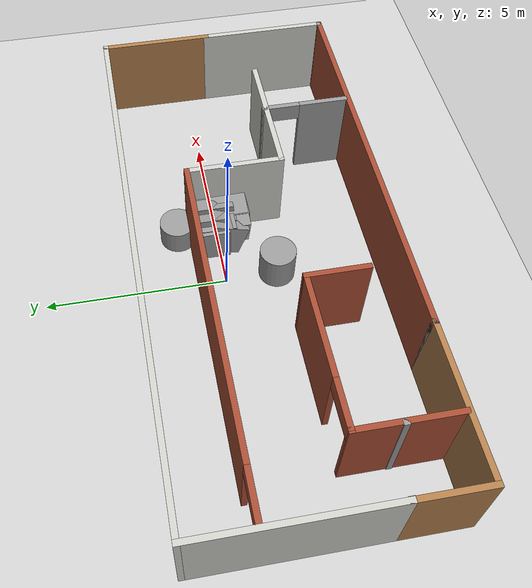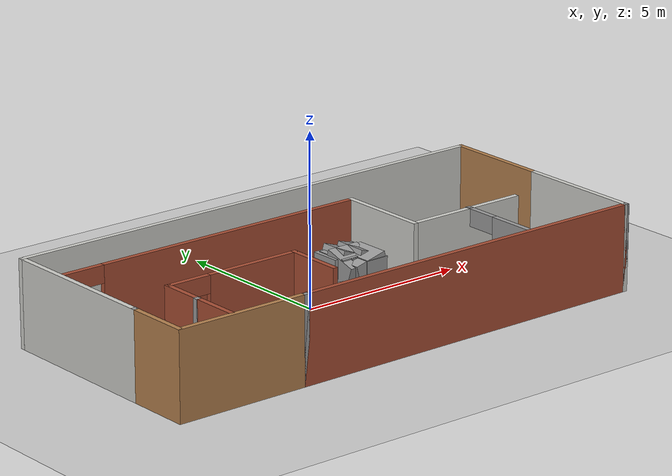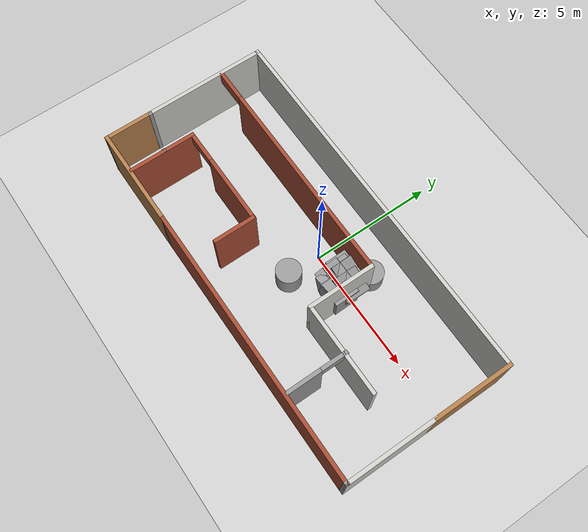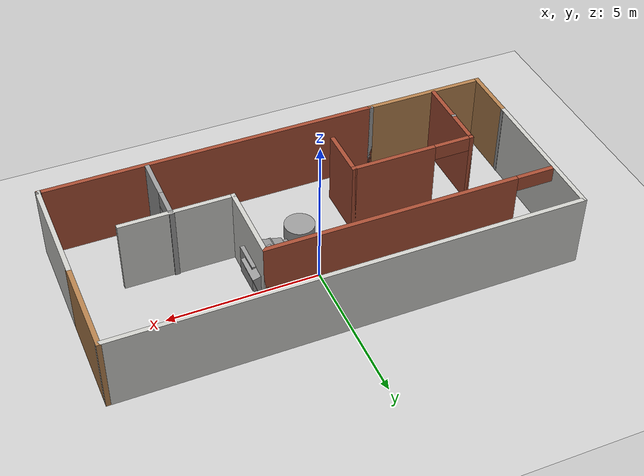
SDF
<sdf version="1.7">
 <world name="default">
  <light name="sun" type="directional">
   <pose>0 0 10 0 -0 0</pose>
   <diffuse>0.8 0.8 0.8 1</diffuse>
   <specular>0.2 0.2 0.2 1</specular>
   <attenuation>
    <range>1000</range>
    <constant>0.9</constant>
    <linear>0.01</linear>
    <quadratic>0.001</quadratic>
   </attenuation>
   <direction>-0.5 0.1 -0.9</direction>
   <spot><inner_angle>0</inner_angle><outer_angle>0</outer_angle><falloff>0</falloff></spot>
  </light>
  <model name="ground_plane">
   <static>1</static>
   <link name="link">
    <collision name="collision">
     <geometry><plane><normal>0 0 1</normal><size>100 100</size></plane></geometry>
     <surface><friction><ode><mu>100</mu><mu2>50</mu2></ode></friction></surface>
    </collision>
    <visual name="visual">
     <cast_shadows>0</cast_shadows>
     <geometry><plane><normal>0 0 1</normal><size>100 100</size></plane></geometry>
     <material>
      <script><uri>file://media/materials/scripts/gazebo.material</uri><name>Gazebo/Grey</name></script>
     </material>
    </visual>
   </link>
  </model>
  <gravity>0 0 -9.8</gravity>
  <magnetic_field>6e-06 2.3e-05 -4.2e-05</magnetic_field>
  <atmosphere type="adiabatic"/>
  <physics type="ode">
   <max_step_size>0.001</max_step_size>
   <real_time_factor>1</real_time_factor>
   <real_time_update_rate>1000</real_time_update_rate>
  </physics>
  <scene><ambient>0.4 0.4 0.4 1</ambient><background>0.7 0.7 0.7 1</background><shadows>1</shadows></scene>
  <audio><device>default</device></audio>
  <spherical_coordinates>
   <surface_model>EARTH_WGS84</surface_model>
   <latitude_deg>0</latitude_deg>
   <longitude_deg>0</longitude_deg>
   <elevation>0</elevation>
   <heading_deg>0</heading_deg>
  </spherical_coordinates>
  <model name="world1_new">
   <pose>-0.07 -0.93 0 0 -0 0</pose>
   <link name="Wall_0">
    <collision name="Wall_0_Collision">
     <geometry><box><size>0.16 0.15 2.5</size></box></geometry>
     <pose>0 0 1.25 0 -0 0</pose>
    </collision>
    <visual name="Wall_0_Visual">
     <pose>0 0 1.25 0 -0 0</pose>
     <geometry><box><size>0.16 0.15 2.5</size></box></geometry>
     <material>
      <script><uri>file://media/materials/scripts/gazebo.material</uri><name>Gazebo/Grey</name></script>
      <ambient>1 1 1 1</ambient>
     </material>
     <meta><layer>0</layer></meta>
    </visual>
    <pose>-3.575 -3.35 0 0 -0 0</pose>
   </link>
   <link name="Wall_1">
    <collision name="Wall_1_Collision">
     <geometry><box><size>11.25 0.15 2.5</size></box></geometry>
     <pose>0 0 1.25 0 -0 0</pose>
    </collision>
    <visual name="Wall_1_Visual">
     <pose>0 0 1.25 0 -0 0</pose>
     <geometry><box><size>11.25 0.15 2.5</size></box></geometry>
     <material>
      <script><uri>file://media/materials/scripts/gazebo.material</uri><name>Gazebo/Bricks</name></script>
      <ambient>1 1 1 1</ambient>
     </material>
     <meta><layer>0</layer></meta>
    </visual>
    <pose>1.98 -3.35 0 0 -0 0</pose>
   </link>
   <link name="Wall_11">
    <collision name="Wall_11_Collision">
     <geometry><box><size>2 0.15 2.5</size></box></geometry>
     <pose>0 0 1.25 0 -0 0</pose>
    </collision>
    <visual name="Wall_11_Visual">
     <pose>0 0 1.25 0 -0 0</pose>
     <geometry><box><size>2 0.15 2.5</size></box></geometry>
     <material>
      <script><uri>file://media/materials/scripts/gazebo.material</uri><name>Gazebo/Wood</name></script>
      <ambient>1 1 1 1</ambient>
     </material>
     <meta><layer>0</layer></meta>
    </visual>
    <pose>-7.55 -2.425 0 0 -0 -1.5708</pose>
   </link>
   <link name="Wall_12">
    <collision name="Wall_12_Collision">
     <geometry><box><size>4.13 0.15 2.5</size></box></geometry>
     <pose>0 0 1.25 0 -0 0</pose>
    </collision>
    <visual name="Wall_12_Visual">
     <pose>0 0 1.25 0 -0 0</pose>
     <geometry><box><size>4.13 0.15 2.5</size></box></geometry>
     <material>
      <script><uri>file://media/materials/scripts/gazebo.material</uri><name>Gazebo/Wood</name></script>
      <ambient>1 1 1 1</ambient>
     </material>
     <meta><layer>0</layer></meta>
    </visual>
    <pose>-5.56 -3.35 0 0 -0 0</pose>
   </link>
   <link name="Wall_13">
    <collision name="Wall_13_Collision">
     <geometry><box><size>0.15 0.15 2.5</size></box></geometry>
     <pose>0 0 1.25 0 -0 0</pose>
    </collision>
    <visual name="Wall_13_Visual">
     <pose>0 0 1.25 0 -0 0</pose>
     <geometry><box><size>0.15 0.15 2.5</size></box></geometry>
     <material>
      <script><uri>file://media/materials/scripts/gazebo.material</uri><name>Gazebo/Grey</name></script>
      <ambient>1 1 1 1</ambient>
     </material>
     <meta><layer>0</layer></meta>
    </visual>
    <pose>-3.57 -3.35 0 0 -0 0</pose>
   </link>
   <link name="Wall_16">
    <collision name="Wall_16_Collision">
     <geometry><box><size>0.15 0.15 2.5</size></box></geometry>
     <pose>0 0 1.25 0 -0 0</pose>
    </collision>
    <visual name="Wall_16_Visual">
     <pose>0 0 1.25 0 -0 0</pose>
     <geometry><box><size>0.15 0.15 2.5</size></box></geometry>
     <material>
      <script><uri>file://media/materials/scripts/gazebo.material</uri><name>Gazebo/Grey</name></script>
      <ambient>1 1 1 1</ambient>
     </material>
     <meta><layer>0</layer></meta>
    </visual>
    <pose>-5.89 -1.9 0 0 -0 0</pose>
   </link>
   <link name="Wall_19">
    <collision name="Wall_19_Collision">
     <geometry><box><size>2.75 0.15 2.5</size></box></geometry>
     <pose>0 0 1.25 0 -0 0</pose>
    </collision>
    <visual name="Wall_19_Visual">
     <pose>0 0 1.25 0 -0 0</pose>
     <geometry><box><size>2.75 0.15 2.5</size></box></geometry>
     <material>
      <script><uri>file://media/materials/scripts/gazebo.material</uri><name>Gazebo/Bricks</name></script>
      <ambient>1 1 1 1</ambient>
     </material>
     <meta><layer>0</layer></meta>
    </visual>
    <pose>-5.87 -1.98 0 0 -0 1.5708</pose>
   </link>
   <link name="Wall_2">
    <collision name="Wall_2_Collision">
     <geometry><box><size>0.16 0.15 2.5</size></box></geometry>
     <pose>0 0 1.25 0 -0 0</pose>
    </collision>
    <visual name="Wall_2_Visual">
     <pose>0 0 1.25 0 -0 0</pose>
     <geometry><box><size>0.16 0.15 2.5</size></box></geometry>
     <material>
      <script><uri>file://media/materials/scripts/gazebo.material</uri><name>Gazebo/Grey</name></script>
      <ambient>1 1 1 1</ambient>
     </material>
     <meta><layer>0</layer></meta>
    </visual>
    <pose>7.535 -3.35 0 0 -0 0</pose>
   </link>
   <link name="Wall_20">
    <pose>-3.82 -0.68 0 0 -0 0</pose>
    <visual name="Wall_20_Visual_0">
     <pose>-2.095 0 1.25 0 -0 0</pose>
     <geometry><box><size>0.06 0.15 2.5</size></box></geometry>
     <material>
      <script><uri>file://media/materials/scripts/gazebo.material</uri><name>Gazebo/Bricks</name></script>
      <ambient>1 1 1 1</ambient>
     </material>
     <meta><layer>0</layer></meta>
    </visual>
    <collision name="Wall_20_Collision_0">
     <geometry><box><size>0.06 0.15 2.5</size></box></geometry>
     <pose>-2.095 0 1.25 0 -0 0</pose>
    </collision>
    <visual name="Wall_20_Visual_1">
     <pose>0.68 0 1.25 0 -0 0</pose>
     <geometry><box><size>2.89 0.15 2.5</size></box></geometry>
     <material>
      <script><uri>file://media/materials/scripts/gazebo.material</uri><name>Gazebo/Bricks</name></script>
      <ambient>1 1 1 1</ambient>
     </material>
     <meta><layer>0</layer></meta>
    </visual>
    <collision name="Wall_20_Collision_1">
     <geometry><box><size>2.89 0.15 2.5</size></box></geometry>
     <pose>0.68 0 1.25 0 -0 0</pose>
    </collision>
    <visual name="Wall_20_Visual_2">
     <pose>-1.415 0 2.25 0 -0 0</pose>
     <geometry><box><size>1.3 0.15 0.5</size></box></geometry>
     <material>
      <script><uri>file://media/materials/scripts/gazebo.material</uri><name>Gazebo/Bricks</name></script>
      <ambient>1 1 1 1</ambient>
     </material>
     <meta><layer>0</layer></meta>
    </visual>
    <collision name="Wall_20_Collision_2">
     <geometry><box><size>1.3 0.15 0.5</size></box></geometry>
     <pose>-1.415 0 2.25 0 -0 0</pose>
    </collision>
   </link>
   <link name="Wall_21">
    <collision name="Wall_21_Collision">
     <geometry><box><size>1.75 0.15 2.5</size></box></geometry>
     <pose>0 0 1.25 0 -0 0</pose>
    </collision>
    <visual name="Wall_21_Visual">
     <pose>0 0 1.25 0 -0 0</pose>
     <geometry><box><size>1.75 0.15 2.5</size></box></geometry>
     <material>
      <script><uri>file://media/materials/scripts/gazebo.material</uri><name>Gazebo/Bricks</name></script>
      <ambient>1 1 1 1</ambient>
     </material>
     <meta><layer>0</layer></meta>
    </visual>
    <pose>-1.77 -1.48 0 0 -0 -1.5708</pose>
   </link>
   <link name="Wall_23">
    <pose>-2.68 1.67 0 0 -0 0</pose>
    <visual name="Wall_23_Visual_0">
     <pose>-4.84 0 1.25 0 -0 0</pose>
     <geometry><box><size>0.07 0.15 2.5</size></box></geometry>
     <material>
      <script><uri>file://media/materials/scripts/gazebo.material</uri><name>Gazebo/Bricks</name></script>
      <ambient>1 1 1 1</ambient>
     </material>
     <meta><layer>0</layer></meta>
    </visual>
    <collision name="Wall_23_Collision_0">
     <geometry><box><size>0.07 0.15 2.5</size></box></geometry>
     <pose>-4.84 0 1.25 0 -0 0</pose>
    </collision>
    <visual name="Wall_23_Visual_1">
     <pose>0.665 0 1.25 0 -0 0</pose>
     <geometry><box><size>8.42 0.15 2.5</size></box></geometry>
     <material>
      <script><uri>file://media/materials/scripts/gazebo.material</uri><name>Gazebo/Bricks</name></script>
      <ambient>1 1 1 1</ambient>
     </material>
     <meta><layer>0</layer></meta>
    </visual>
    <collision name="Wall_23_Collision_1">
     <geometry><box><size>8.42 0.15 2.5</size></box></geometry>
     <pose>0.665 0 1.25 0 -0 0</pose>
    </collision>
    <visual name="Wall_23_Visual_2">
     <pose>-4.175 0 2.25 0 -0 0</pose>
     <geometry><box><size>1.26 0.15 0.5</size></box></geometry>
     <material>
      <script><uri>file://media/materials/scripts/gazebo.material</uri><name>Gazebo/Bricks</name></script>
      <ambient>1 1 1 1</ambient>
     </material>
     <meta><layer>0</layer></meta>
    </visual>
    <collision name="Wall_23_Collision_2">
     <geometry><box><size>1.26 0.15 0.5</size></box></geometry>
     <pose>-4.175 0 2.25 0 -0 0</pose>
    </collision>
   </link>
   <link name="Wall_24">
    <collision name="Wall_24_Collision">
     <geometry><box><size>2.75 0.15 2.5</size></box></geometry>
     <pose>0 0 1.25 0 -0 0</pose>
    </collision>
    <visual name="Wall_24_Visual">
     <pose>0 0 1.25 0 -0 0</pose>
     <geometry><box><size>2.75 0.15 2.5</size></box></geometry>
     <material>
      <script><uri>file://media/materials/scripts/gazebo.material</uri><name>Gazebo/CeilingTiled</name></script>
      <ambient>1 1 1 1</ambient>
     </material>
     <meta><layer>0</layer></meta>
    </visual>
    <pose>2.12 0.37 0 0 -0 -1.5708</pose>
   </link>
   <link name="Wall_25">
    <collision name="Wall_25_Collision">
     <geometry><box><size>3.75 0.15 2.5</size></box></geometry>
     <pose>0 0 1.25 0 -0 0</pose>
    </collision>
    <visual name="Wall_25_Visual">
     <pose>0 0 1.25 0 -0 0</pose>
     <geometry><box><size>3.75 0.15 2.5</size></box></geometry>
     <material>
      <script><uri>file://media/materials/scripts/gazebo.material</uri><name>Gazebo/CeilingTiled</name></script>
      <ambient>1 1 1 1</ambient>
     </material>
     <meta><layer>0</layer></meta>
    </visual>
    <pose>3.92 -0.93 0 0 -0 0</pose>
   </link>
   <link name="Wall_27">
    <collision name="Wall_27_Collision">
     <geometry><box><size>0.16 0.15 2.5</size></box></geometry>
     <pose>0 0 1.25 0 -0 0</pose>
    </collision>
    <visual name="Wall_27_Visual">
     <pose>0 0 1.25 0 -0 0</pose>
     <geometry><box><size>0.16 0.15 2.5</size></box></geometry>
     <material>
      <script><uri>file://media/materials/scripts/gazebo.material</uri><name>Gazebo/Grey</name></script>
      <ambient>1 1 1 1</ambient>
     </material>
     <meta><layer>0</layer></meta>
    </visual>
    <pose>4.105 -0.89 0 0 -0 0</pose>
   </link>
   <link name="Wall_28">
    <pose>4.11 -2.065 0 0 -0 -1.5708</pose>
    <visual name="Wall_28_Visual_0">
     <pose>-1.1575 0 1.25 0 -0 0</pose>
     <geometry><box><size>0.185 0.15 2.5</size></box></geometry>
     <material>
      <script><uri>file://media/materials/scripts/gazebo.material</uri><name>Gazebo/Grey</name></script>
      <ambient>1 1 1 1</ambient>
     </material>
     <meta><layer>0</layer></meta>
    </visual>
    <collision name="Wall_28_Collision_0">
     <geometry><box><size>0.185 0.15 2.5</size></box></geometry>
     <pose>-1.1575 0 1.25 0 -0 0</pose>
    </collision>
    <visual name="Wall_28_Visual_1">
     <pose>0.5425 0 1.25 0 -0 0</pose>
     <geometry><box><size>1.415 0.15 2.5</size></box></geometry>
     <material>
      <script><uri>file://media/materials/scripts/gazebo.material</uri><name>Gazebo/Grey</name></script>
      <ambient>1 1 1 1</ambient>
     </material>
     <meta><layer>0</layer></meta>
    </visual>
    <collision name="Wall_28_Collision_1">
     <geometry><box><size>1.415 0.15 2.5</size></box></geometry>
     <pose>0.5425 0 1.25 0 -0 0</pose>
    </collision>
    <visual name="Wall_28_Visual_2">
     <pose>-0.615 0 2.25 0 -0 0</pose>
     <geometry><box><size>0.9 0.15 0.5</size></box></geometry>
     <material>
      <script><uri>file://media/materials/scripts/gazebo.material</uri><name>Gazebo/Grey</name></script>
      <ambient>1 1 1 1</ambient>
     </material>
     <meta><layer>0</layer></meta>
    </visual>
    <collision name="Wall_28_Collision_2">
     <geometry><box><size>0.9 0.15 0.5</size></box></geometry>
     <pose>-0.615 0 2.25 0 -0 0</pose>
    </collision>
   </link>
   <link name="Wall_3">
    <collision name="Wall_3_Collision">
     <geometry><box><size>0.16 0.15 2.5</size></box></geometry>
     <pose>0 0 1.25 0 -0 0</pose>
    </collision>
    <visual name="Wall_3_Visual">
     <pose>0 0 1.25 0 -0 0</pose>
     <geometry><box><size>0.16 0.15 2.5</size></box></geometry>
     <material>
      <script><uri>file://media/materials/scripts/gazebo.material</uri><name>Gazebo/Grey</name></script>
      <ambient>1 1 1 1</ambient>
     </material>
     <meta><layer>0</layer></meta>
    </visual>
    <pose>7.545 -3.35 0 0 -0 0</pose>
   </link>
   <link name="Wall_4">
    <collision name="Wall_4_Collision">
     <geometry><box><size>3.75 0.15 2.5</size></box></geometry>
     <pose>0 0 1.25 0 -0 0</pose>
    </collision>
    <visual name="Wall_4_Visual">
     <pose>0 0 1.25 0 -0 0</pose>
     <geometry><box><size>3.75 0.15 2.5</size></box></geometry>
     <material>
      <script><uri>file://media/materials/scripts/gazebo.material</uri><name>Gazebo/CeilingTiled</name></script>
      <ambient>1 1 1 1</ambient>
     </material>
     <meta><layer>0</layer></meta>
    </visual>
    <pose>7.55 -1.55 0 0 -0 1.5708</pose>
   </link>
   <link name="Wall_6">
    <collision name="Wall_6_Collision">
     <geometry><box><size>3.25 0.15 2.5</size></box></geometry>
     <pose>0 0 1.25 0 -0 0</pose>
    </collision>
    <visual name="Wall_6_Visual">
     <pose>0 0 1.25 0 -0 0</pose>
     <geometry><box><size>3.25 0.15 2.5</size></box></geometry>
     <material>
      <script><uri>file://media/materials/scripts/gazebo.material</uri><name>Gazebo/Wood</name></script>
      <ambient>1 1 1 1</ambient>
     </material>
     <meta><layer>0</layer></meta>
    </visual>
    <pose>7.55 1.8 0 0 -0 1.5708</pose>
   </link>
   <link name="Wall_7">
    <collision name="Wall_7_Collision">
     <geometry><box><size>15.25 0.15 2.5</size></box></geometry>
     <pose>0 0 1.25 0 -0 0</pose>
    </collision>
    <visual name="Wall_7_Visual">
     <pose>0 0 1.25 0 -0 0</pose>
     <geometry><box><size>15.25 0.15 2.5</size></box></geometry>
     <material>
      <script><uri>file://media/materials/scripts/gazebo.material</uri><name>Gazebo/CeilingTiled</name></script>
      <ambient>1 1 1 1</ambient>
     </material>
     <meta><layer>0</layer></meta>
    </visual>
    <pose>-0 3.35 0 0 -0 3.14159</pose>
   </link>
   <link name="Wall_8">
    <collision name="Wall_8_Collision">
     <geometry><box><size>5 0.15 2.5</size></box></geometry>
     <pose>0 0 1.25 0 -0 0</pose>
    </collision>
    <visual name="Wall_8_Visual">
     <pose>0 0 1.25 0 -0 0</pose>
     <geometry><box><size>5 0.15 2.5</size></box></geometry>
     <material>
      <script><uri>file://media/materials/scripts/gazebo.material</uri><name>Gazebo/CeilingTiled</name></script>
      <ambient>1 1 1 1</ambient>
     </material>
     <meta><layer>0</layer></meta>
    </visual>
    <pose>-7.55 0.925 0 0 -0 -1.5708</pose>
   </link>
   <link name="Wall_9">
    <collision name="Wall_9_Collision">
     <geometry><box><size>0.16 0.15 2.5</size></box></geometry>
     <pose>0 0 1.25 0 -0 0</pose>
    </collision>
    <visual name="Wall_9_Visual">
     <pose>0 0 1.25 0 -0 0</pose>
     <geometry><box><size>0.16 0.15 2.5</size></box></geometry>
     <material>
      <script><uri>file://media/materials/scripts/gazebo.material</uri><name>Gazebo/Grey</name></script>
      <ambient>1 1 1 1</ambient>
     </material>
     <meta><layer>0</layer></meta>
    </visual>
    <pose>-7.545 -1.5 0 0 -0 0</pose>
   </link>
   <static>1</static>
  </model>
  <model name="unit_cylinder">
   <pose>0.070811 -1.42648 0.499993 -2e-06 -0 -0</pose>
   <link name="link">
    <inertial>
     <mass>1</mass>
     <inertia><ixx>0.145833</ixx><ixy>0</ixy><ixz>0</ixz><iyy>0.145833</iyy><iyz>0</iyz><izz>0.125</izz></inertia>
    </inertial>
    <collision name="collision">
     <geometry><cylinder><radius>0.5</radius><length>1</length></cylinder></geometry>
    </collision>
    <visual name="visual">
     <geometry><cylinder><radius>0.5</radius><length>1</length></cylinder></geometry>
     <material>
      <script><name>Gazebo/Grey</name><uri>file://media/materials/scripts/gazebo.material</uri></script>
     </material>
    </visual>
   </link>
  </model>
  <model name="unit_box">
   <pose>1.75846 -0.357301 0.810016 0 -0 0.012751</pose>
   <link name="link">
    <inertial>
     <mass>1</mass>
     <inertia>
      <ixx>0.166667</ixx>
      <ixy>0</ixy>
      <ixz>0</ixz>
      <iyy>0.166667</iyy>
      <iyz>0</iyz>
      <izz>0.166667</izz>
     </inertia>
    </inertial>
    <collision name="collision"><geometry><box><size>0.999998 1 1.00001</size></box></geometry></collision>
    <visual name="visual">
     <geometry><box><size>0.999998 1 1.00001</size></box></geometry>
     <material>
      <script><name>Gazebo/Grey</name><uri>file://media/materials/scripts/gazebo.material</uri></script>
     </material>
    </visual>
   </link>
  </model>
  <model name="unit_box_0">
   <pose>1.1721 0.285147 0.801251 3e-06 2.1e-05 0.011874</pose>
   <link name="link">
    <inertial>
     <mass>1</mass>
     <inertia>
      <ixx>0.166667</ixx>
      <ixy>0</ixy>
      <ixz>0</ixz>
      <iyy>0.166667</iyy>
      <iyz>0</iyz>
      <izz>0.166667</izz>
     </inertia>
    </inertial>
    <collision name="collision"><geometry><box><size>0.999994 1 1</size></box></geometry></collision>
    <visual name="visual">
     <geometry><box><size>0.999994 1 1</size></box></geometry>
     <material>
      <script><name>Gazebo/Grey</name><uri>file://media/materials/scripts/gazebo.material</uri></script>
     </material>
    </visual>
   </link>
  </model>
  <model name="unit_box_1">
   <pose>1.76257 0.058699 0.854413 2e-06 0.297387 -0.001236</pose>
   <link name="link">
    <inertial>
     <mass>1</mass>
     <inertia>
      <ixx>0.166667</ixx>
      <ixy>0</ixy>
      <ixz>0</ixz>
      <iyy>0.166667</iyy>
      <iyz>0</iyz>
      <izz>0.166667</izz>
     </inertia>
    </inertial>
    <collision name="collision"><geometry><box><size>1 1 0.999992</size></box></geometry></collision>
    <visual name="visual">
     <geometry><box><size>1 1 0.999992</size></box></geometry>
     <material>
      <script><name>Gazebo/Grey</name><uri>file://media/materials/scripts/gazebo.material</uri></script>
     </material>
    </visual>
   </link>
  </model>
  <model name="unit_box_2">
   <pose>1.57674 0.035772 0.808661 3.14159 -0 -0.001228</pose>
   <link name="link">
    <inertial>
     <mass>1</mass>
     <inertia>
      <ixx>0.166667</ixx>
      <ixy>0</ixy>
      <ixz>0</ixz>
      <iyy>0.166667</iyy>
      <iyz>0</iyz>
      <izz>0.166667</izz>
     </inertia>
    </inertial>
    <collision name="collision">
     <geometry><box><size>0.999995 0.999997 0.999989</size></box></geometry>
    </collision>
    <visual name="visual">
     <geometry><box><size>0.999995 0.999997 0.999989</size></box></geometry>
     <material>
      <script><name>Gazebo/Grey</name><uri>file://media/materials/scripts/gazebo.material</uri></script>
     </material>
    </visual>
   </link>
  </model>
  <model name="unit_box_3">
   <pose>1.27301 -0.138145 0.845982 1.5708 0.309405 -1.56309</pose>
   <link name="link">
    <inertial>
     <mass>1</mass>
     <inertia>
      <ixx>0.166667</ixx>
      <ixy>0</ixy>
      <ixz>0</ixz>
      <iyy>0.166667</iyy>
      <iyz>0</iyz>
      <izz>0.166667</izz>
     </inertia>
    </inertial>
    <collision name="collision"><geometry><box><size>1 0.999994 1.00001</size></box></geometry></collision>
    <visual name="visual">
     <geometry><box><size>1 0.999994 1.00001</size></box></geometry>
     <material>
      <script><name>Gazebo/Grey</name><uri>file://media/materials/scripts/gazebo.material</uri></script>
     </material>
    </visual>
   </link>
  </model>
  <model name="unit_box_4">
   <pose>1.58022 0.265443 0.821458 -1.3611 1.57079 -1.36017</pose>
   <link name="link">
    <inertial>
     <mass>1</mass>
     <inertia>
      <ixx>0.166667</ixx>
      <ixy>0</ixy>
      <ixz>0</ixz>
      <iyy>0.166667</iyy>
      <iyz>0</iyz>
      <izz>0.166667</izz>
     </inertia>
    </inertial>
    <collision name="collision"><geometry><box><size>0.999991 1.00002 0.999991</size></box></geometry></collision>
    <visual name="visual">
     <geometry><box><size>0.999991 1.00002 0.999991</size></box></geometry>
     <material>
      <script><name>Gazebo/Grey</name><uri>file://media/materials/scripts/gazebo.material</uri></script>
     </material>
    </visual>
   </link>
  </model>
  <model name="unit_box_5">
   <pose>1.32965 0.297777 0.841995 1.57081 1.23805 -3.1297</pose>
   <link name="link">
    <inertial>
     <mass>1</mass>
     <inertia>
      <ixx>0.166667</ixx>
      <ixy>0</ixy>
      <ixz>0</ixz>
      <iyy>0.166667</iyy>
      <iyz>0</iyz>
      <izz>0.166667</izz>
     </inertia>
    </inertial>
    <collision name="collision"><geometry><box><size>0.999994 1 0.999995</size></box></geometry></collision>
    <visual name="visual">
     <geometry><box><size>0.999994 1 0.999995</size></box></geometry>
     <material>
      <script><name>Gazebo/Grey</name><uri>file://media/materials/scripts/gazebo.material</uri></script>
     </material>
    </visual>
   </link>
  </model>
  <model name="unit_box_6">
   <pose>1.52406 -0.331345 0.852965 -3.4e-05 -0.244769 0.012761</pose>
   <link name="link">
    <inertial>
     <mass>1</mass>
     <inertia>
      <ixx>0.166667</ixx>
      <ixy>0</ixy>
      <ixz>0</ixz>
      <iyy>0.166667</iyy>
      <iyz>0</iyz>
      <izz>0.166667</izz>
     </inertia>
    </inertial>
    <collision name="collision"><geometry><box><size>1 0.999995 1</size></box></geometry></collision>
    <visual name="visual">
     <geometry><box><size>1 0.999995 1</size></box></geometry>
     <material>
      <script><name>Gazebo/Grey</name><uri>file://media/materials/scripts/gazebo.material</uri></script>
     </material>
    </visual>
   </link>
  </model>
  <model name="unit_box_7">
   <pose>1.29086 0.086866 0.818374 -1.5708 -0 0.007763</pose>
   <link name="link">
    <inertial>
     <mass>1</mass>
     <inertia>
      <ixx>0.166667</ixx>
      <ixy>0</ixy>
      <ixz>0</ixz>
      <iyy>0.166667</iyy>
      <iyz>0</iyz>
      <izz>0.166667</izz>
     </inertia>
    </inertial>
    <collision name="collision"><geometry><box><size>1.00001 0.999988 1</size></box></geometry></collision>
    <visual name="visual">
     <geometry><box><size>1.00001 0.999988 1</size></box></geometry>
     <material>
      <script><name>Gazebo/Grey</name><uri>file://media/materials/scripts/gazebo.material</uri></script>
     </material>
    </visual>
   </link>
  </model>
  <model name="unit_cylinder_0">
   <pose>1.76084 1.11192 0.206915 0 -0 0.000274</pose>
   <link name="link">
    <inertial>
     <mass>1</mass>
     <inertia><ixx>0.145833</ixx><ixy>0</ixy><ixz>0</ixz><iyy>0.145833</iyy><iyz>0</iyz><izz>0.125</izz></inertia>
    </inertial>
    <collision name="collision">
     <geometry><cylinder><radius>0.500001</radius><length>0.999999</length></cylinder></geometry>
    </collision>
    <visual name="visual">
     <geometry><cylinder><radius>0.500001</radius><length>0.999999</length></cylinder></geometry>
     <material>
      <script><name>Gazebo/Grey</name><uri>file://media/materials/scripts/gazebo.material</uri></script>
     </material>
    </visual>
   </link>
  </model>
 </world>
</sdf>
